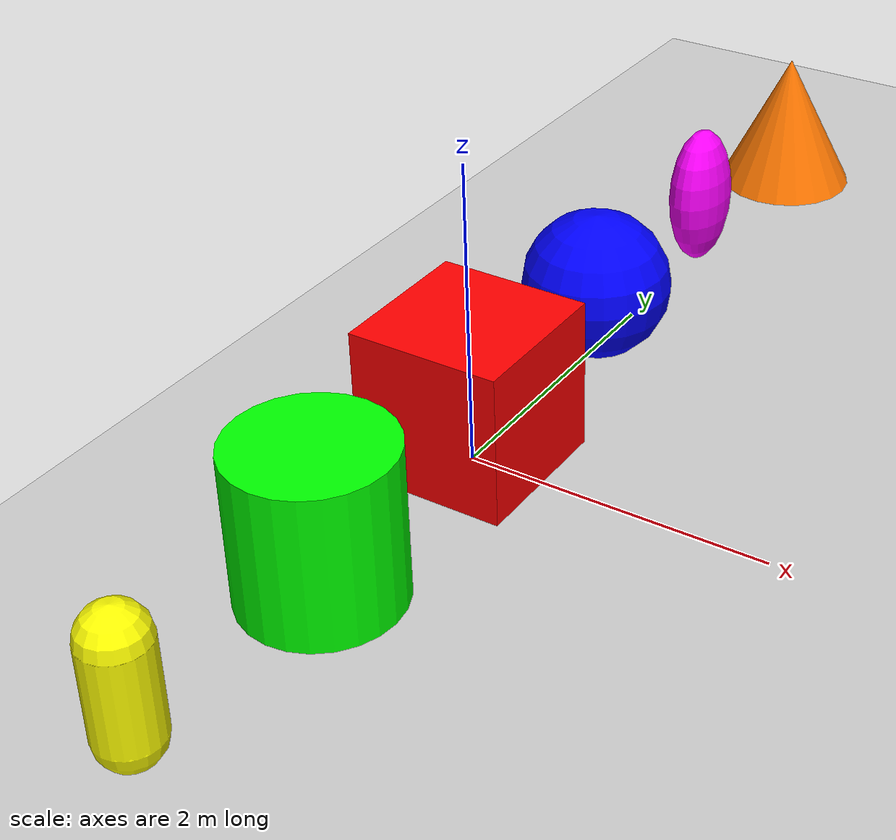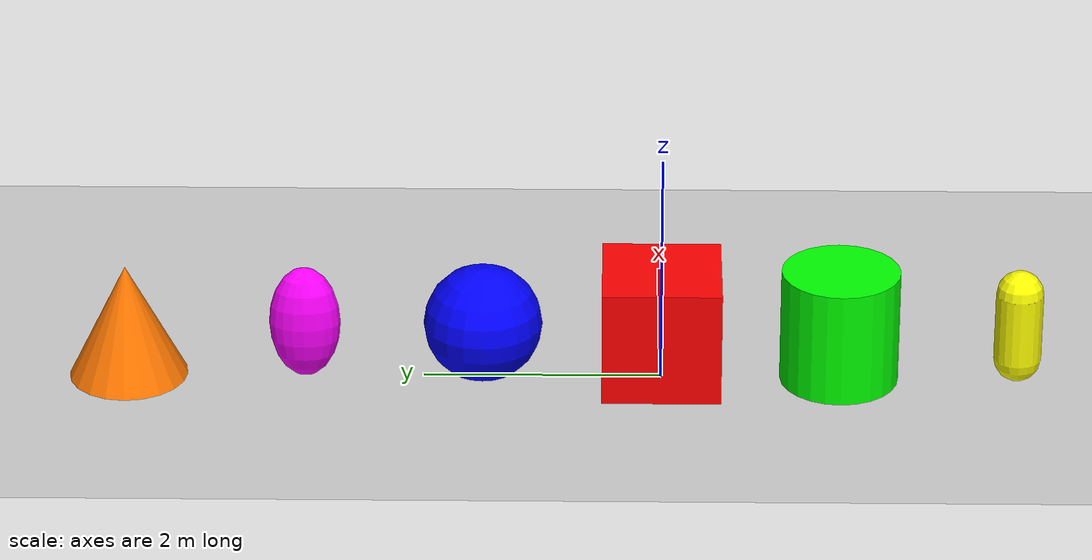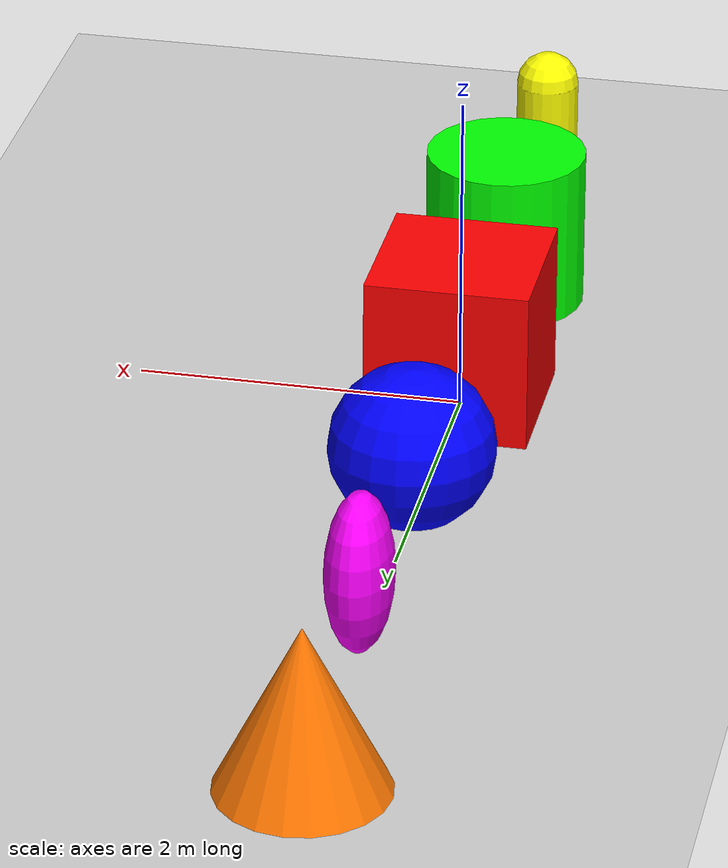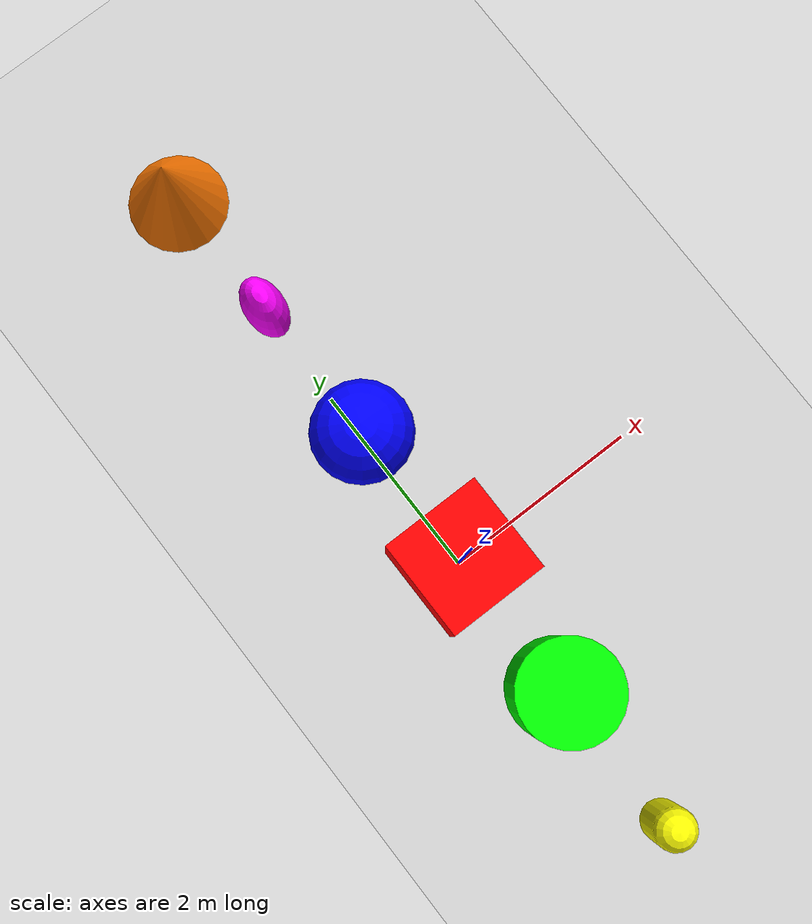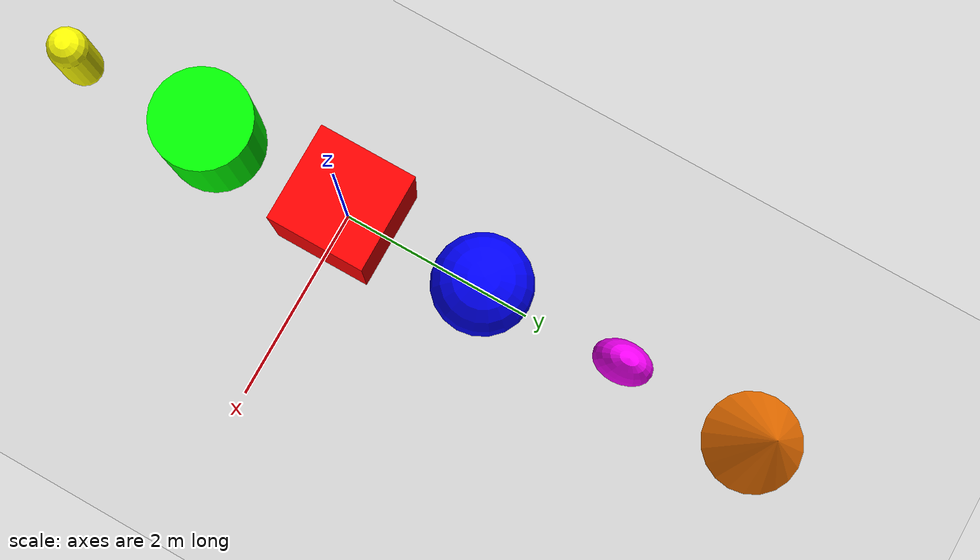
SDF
<?xml version="1.0" ?>
<sdf version="1.11">
    <!--
      Try moving a model using the command in the following CDATA block::
    -->
    <![CDATA[
    gz service -s /world/shapes/set_pose \
               --reqtype gz.msgs.Pose --reptype gz.msgs.Boolean \
               --timeout 300 --req 'name: "box", position: {z: 5.0}'
  ]]>
    <world name="shapes_with_tf2_and_wrench">

        <physics type="ode">
          <max_step_size>0.004</max_step_size>
          <real_time_factor>1.0</real_time_factor>
          <real_time_update_rate>250</real_time_update_rate>
        </physics>
        <plugin name='gz::sim::systems::Physics' filename='gz-sim-physics-system'/>
        <plugin filename="gz-sim-scene-broadcaster-system"  name="gz::sim::systems::SceneBroadcaster"/>
        <plugin filename="gz-sim-apply-link-wrench-system"  name="gz::sim::systems::ApplyLinkWrench"/>
        <plugin filename="gz-sim-user-commands-system" name="gz::sim::systems::UserCommands"/>

        <scene>
            <ambient>1.0 1.0 1.0</ambient>
            <background>0.8 0.8 0.8</background>
        </scene>

        <light type="directional" name="sun">
            <cast_shadows>true</cast_shadows>
            <pose>0 0 10 0 0 0</pose>
            <diffuse>0.8 0.8 0.8 1</diffuse>
            <specular>0.2 0.2 0.2 1</specular>
            <attenuation>
                <range>1000</range>
                <constant>0.9</constant>
                <linear>0.01</linear>
                <quadratic>0.001</quadratic>
            </attenuation>
            <direction>-0.5 0.1 -0.9</direction>
        </light>

        <model name="ground_plane">
            <static>true</static>
            <link name="link">
                <collision name="collision">
                    <geometry>
                        <plane>
                            <normal>0 0 1</normal>
                            <size>100 100</size>
                        </plane>
                    </geometry>
                </collision>
                <visual name="visual">
                    <geometry>
                        <plane>
                            <normal>0 0 1</normal>
                            <size>100 100</size>
                        </plane>
                    </geometry>
                    <material>
                        <ambient>0.8 0.8 0.8 1</ambient>
                        <diffuse>0.8 0.8 0.8 1</diffuse>
                        <specular>0.8 0.8 0.8 1</specular>
                    </material>
                </visual>
            </link>
        </model>

        <model name="box">
            <pose>0 0 0.5 0 0 0</pose>
            <link name="box_link">
                <inertial>
                    <inertia>
                        <ixx>0.16666</ixx>
                        <ixy>0</ixy>
                        <ixz>0</ixz>
                        <iyy>0.16666</iyy>
                        <iyz>0</iyz>
                        <izz>0.16666</izz>
                    </inertia>
                    <mass>1.0</mass>
                </inertial>
                <collision name="box_collision">
                    <geometry>
                        <box>
                            <size>1 1 1</size>
                        </box>
                    </geometry>
                </collision>

                <visual name="box_visual">
                    <geometry>
                        <box>
                            <size>1 1 1</size>
                        </box>
                    </geometry>
                    <material>
                        <ambient>1 0 0 1</ambient>
                        <diffuse>1 0 0 1</diffuse>
                        <specular>1 0 0 1</specular>
                    </material>
                </visual>
            </link>

            <plugin
                    filename="gz-sim-pose-publisher-system"
                    name="gz::sim::systems::PosePublisher">
                <use_pose_vector_msg>true</use_pose_vector_msg>
                <publish_link_pose>false</publish_link_pose>
                <publish_collision_pose>false</publish_collision_pose>
                <publish_visual_pose>false</publish_visual_pose>
                <publish_nested_model_pose>true</publish_nested_model_pose>
            </plugin>

        </model>

        <model name="cylinder">
            <pose>0 -1.5 0.5 0 0 0</pose>
            <link name="cylinder_link">
                <inertial>
                    <inertia>
                        <ixx>0.1458</ixx>
                        <ixy>0</ixy>
                        <ixz>0</ixz>
                        <iyy>0.1458</iyy>
                        <iyz>0</iyz>
                        <izz>0.125</izz>
                    </inertia>
                    <mass>1.0</mass>
                </inertial>
                <collision name="cylinder_collision">
                    <geometry>
                        <cylinder>
                            <radius>0.5</radius>
                            <length>1.0</length>
                        </cylinder>
                    </geometry>
                </collision>

                <visual name="cylinder_visual">
                    <geometry>
                        <cylinder>
                            <radius>0.5</radius>
                            <length>1.0</length>
                        </cylinder>
                    </geometry>
                    <material>
                        <ambient>0 1 0 1</ambient>
                        <diffuse>0 1 0 1</diffuse>
                        <specular>0 1 0 1</specular>
                    </material>
                </visual>
            </link>

            <plugin
                    filename="gz-sim-pose-publisher-system"
                    name="gz::sim::systems::PosePublisher">
                <use_pose_vector_msg>true</use_pose_vector_msg>
                <publish_link_pose>false</publish_link_pose>
                <publish_collision_pose>false</publish_collision_pose>
                <publish_visual_pose>false</publish_visual_pose>
                <publish_nested_model_pose>true</publish_nested_model_pose>
            </plugin>

        </model>

        <model name="sphere">
            <pose>0 1.5 0.5 0 0 0</pose>
            <link name="sphere_link">
                <inertial>
                    <inertia>
                        <ixx>0.1</ixx>
                        <ixy>0</ixy>
                        <ixz>0</ixz>
                        <iyy>0.1</iyy>
                        <iyz>0</iyz>
                        <izz>0.1</izz>
                    </inertia>
                    <mass>1.0</mass>
                </inertial>
                <collision name="sphere_collision">
                    <geometry>
                        <sphere>
                            <radius>0.5</radius>
                        </sphere>
                    </geometry>
                </collision>

                <visual name="sphere_visual">
                    <geometry>
                        <sphere>
                            <radius>0.5</radius>
                        </sphere>
                    </geometry>
                    <material>
                        <ambient>0 0 1 1</ambient>
                        <diffuse>0 0 1 1</diffuse>
                        <specular>0 0 1 1</specular>
                    </material>
                </visual>
            </link>

            <plugin
                    filename="gz-sim-pose-publisher-system"
                    name="gz::sim::systems::PosePublisher">
                <use_pose_vector_msg>true</use_pose_vector_msg>
                <publish_link_pose>false</publish_link_pose>
                <publish_collision_pose>false</publish_collision_pose>
                <publish_visual_pose>false</publish_visual_pose>
                <publish_nested_model_pose>true</publish_nested_model_pose>
            </plugin>

        </model>

        <model name="capsule">
            <pose>0 -3.0 0.5 0 0 0</pose>
            <link name="capsule_link">
                <inertial>
                    <inertia>
                        <ixx>0.074154</ixx>
                        <ixy>0</ixy>
                        <ixz>0</ixz>
                        <iyy>0.074154</iyy>
                        <iyz>0</iyz>
                        <izz>0.018769</izz>
                    </inertia>
                    <mass>1.0</mass>
                </inertial>
                <collision name="capsule_collision">
                    <geometry>
                        <capsule>
                            <radius>0.2</radius>
                            <length>0.6</length>
                        </capsule>
                    </geometry>
                </collision>
                <visual name="capsule_visual">
                    <geometry>
                        <capsule>
                            <radius>0.2</radius>
                            <length>0.6</length>
                        </capsule>
                    </geometry>
                    <material>
                        <ambient>1 1 0 1</ambient>
                        <diffuse>1 1 0 1</diffuse>
                        <specular>1 1 0 1</specular>
                    </material>
                </visual>
            </link>

            <plugin
                    filename="gz-sim-pose-publisher-system"
                    name="gz::sim::systems::PosePublisher">
                <use_pose_vector_msg>true</use_pose_vector_msg>
                <publish_link_pose>false</publish_link_pose>
                <publish_collision_pose>false</publish_collision_pose>
                <publish_visual_pose>false</publish_visual_pose>
                <publish_nested_model_pose>true</publish_nested_model_pose>
            </plugin>

        </model>

        <model name="ellipsoid">
            <pose>0 3.0 0.5 0 0 0</pose>
            <link name="ellipsoid_link">
                <inertial>
                    <inertia>
                        <ixx>0.068</ixx>
                        <ixy>0</ixy>
                        <ixz>0</ixz>
                        <iyy>0.058</iyy>
                        <iyz>0</iyz>
                        <izz>0.026</izz>
                    </inertia>
                    <mass>1.0</mass>
                </inertial>
                <collision name="ellipsoid_collision">
                    <geometry>
                        <ellipsoid>
                            <radii>0.2 0.3 0.5</radii>
                        </ellipsoid>
                    </geometry>
                </collision>
                <visual name="ellipsoid_visual">
                    <geometry>
                        <ellipsoid>
                            <radii>0.2 0.3 0.5</radii>
                        </ellipsoid>
                    </geometry>
                    <material>
                        <ambient>1 0 1 1</ambient>
                        <diffuse>1 0 1 1</diffuse>
                        <specular>1 0 1 1</specular>
                    </material>
                </visual>
            </link>

            <plugin
                    filename="gz-sim-pose-publisher-system"
                    name="gz::sim::systems::PosePublisher">
                <use_pose_vector_msg>true</use_pose_vector_msg>
                <publish_link_pose>false</publish_link_pose>
                <publish_collision_pose>false</publish_collision_pose>
                <publish_visual_pose>false</publish_visual_pose>
                <publish_nested_model_pose>true</publish_nested_model_pose>
            </plugin>

        </model>

        <model name="cone">
            <pose>0 4.5 0.5 0 0 0</pose>
            <link name="cone_link">
                <inertial auto="true">
                    <density>1</density>
                </inertial>
                <collision name="cone_collision">
                    <geometry>
                        <cone>
                            <radius>0.5</radius>
                            <length>1.0</length>
                        </cone>
                    </geometry>
                </collision>

                <visual name="cone_visual">
                    <geometry>
                        <cone>
                            <radius>0.5</radius>
                            <length>1.0</length>
                        </cone>
                    </geometry>
                    <material>
                        <ambient>1 0.47 0 1</ambient>
                        <diffuse>1 0.47 0 1</diffuse>
                        <specular>1 0.47 0 1</specular>
                    </material>
                </visual>
            </link>

            <plugin
                    filename="gz-sim-pose-publisher-system"
                    name="gz::sim::systems::PosePublisher">
                <use_pose_vector_msg>true</use_pose_vector_msg>
                <publish_link_pose>false</publish_link_pose>
                <publish_collision_pose>false</publish_collision_pose>
                <publish_visual_pose>false</publish_visual_pose>
                <publish_nested_model_pose>true</publish_nested_model_pose>
            </plugin>

        </model>

    </world>

</sdf>
